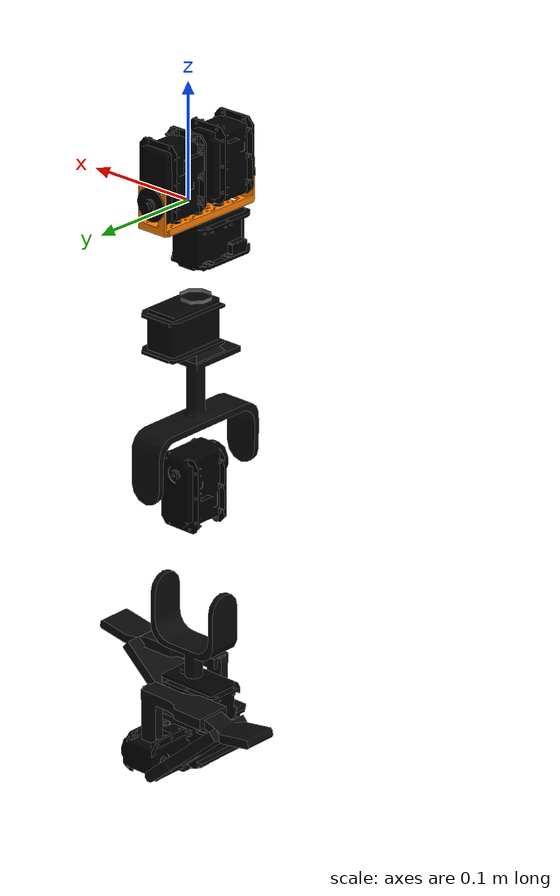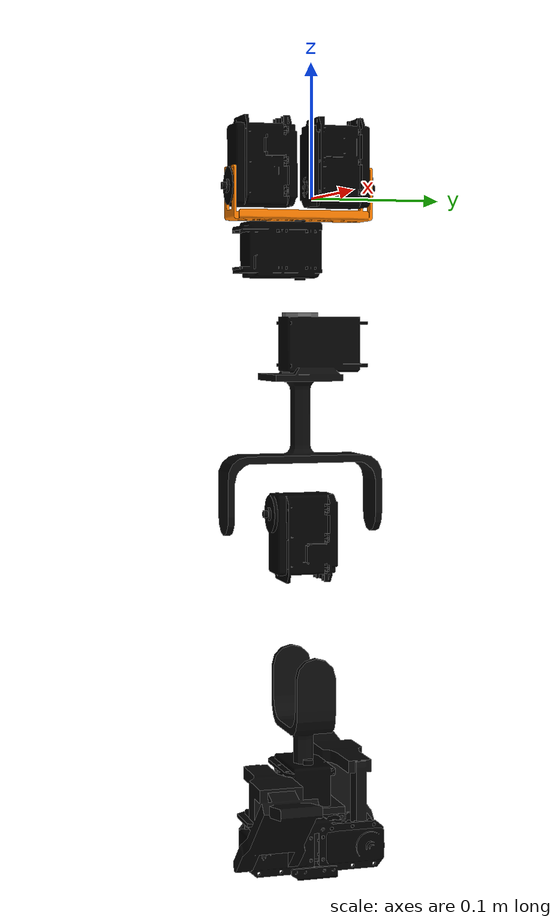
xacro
<?xml version="1.0"?>
<robot name="justina_left_arm" xmlns:xacro="http://www.ros.org/wiki/xacro">
  <!--xacro:include filename="$(find justina_description)/urdf/justina/components/justina_left_arm.gazebo"/-->

  <!-- LEFT ARM LINKS -->
  <link name="shoulders_left_link">
    <visual>
      <origin xyz="0 -0.01 0.02" rpy = "0 3.1415 0"/>
      <geometry>
        <mesh filename="package://justina_description/meshes/justina/servos/Mx106-2.dae"/>
      </geometry>
    </visual>
    <collision>
      <origin xyz="0 -0.01 0.02" rpy = "0 3.1415 0"/>
      <geometry>
        <mesh filename="package://justina_description/meshes/justina/servos/Mx106-2.dae"/>
      </geometry>
    </collision>
    <inertial>
      <origin xyz="0 -0.01 0.02" rpy = "0 0 0"/>
      <mass value="0.125"/>
      <inertia
        ixx="0.0015" ixy="0.0" ixz="0.0"
        iyy="0.002175" iyz="0.0"
        izz="0.003075"/>
    </inertial>
  </link>

  <link name="left_shoulder_frame">
    <visual>
      <origin xyz="0 -0.01 0.01" rpy="0 0 -1.5707"/>
      <geometry>
       <mesh filename="package://justina_description/meshes/justina/arm/shoulder_frame.dae"/>
      </geometry>
      <material name = "la_material"><color rgba="1.0 0.5 0 1"/></material>
    </visual>
    <collision>
      <origin xyz="0 -0.01 0.01" rpy="0 0 -1.5707"/>
      <geometry>
       <mesh filename="package://justina_description/meshes/justina/arm/shoulder_frame.dae"/>
      </geometry>
    </collision>
    <inertial>
      <origin xyz="0 -0.01 0.01" rpy = "0 0 -1.5707"/>
      <mass value="0.08146"/>
      <inertia
        ixx="0.0000813217" ixy="0.0" ixz="0.0"
        iyy="0.000196" iyz="0.0"
        izz="0.0001282"/>
    </inertial>
  </link>

  <link name="left_arm">
    <visual>
      <origin xyz="0 0 -0.02" rpy="0 0 6.2822"/>
      <geometry>
       <mesh filename="package://justina_description/meshes/justina/servos/Mx64.dae"/>
      </geometry>
    </visual>
    <visual>
      <origin xyz="0 0 -0.216" rpy="0 3.1416 1.5707"/>
      <geometry>
       <mesh filename="package://justina_description/meshes/justina/arm/arm.dae"/>
      </geometry>
    </visual>
    <collision>
      <origin xyz="0 0 -0.02" rpy="0 0 6.2822"/>
      <geometry>
       <mesh filename="package://justina_description/meshes/justina/servos/Mx64.dae"/>
      </geometry>
    </collision>
    <collision>
      <origin xyz="0 0 -0.216" rpy="0 3.1416 1.5707"/>
      <geometry>
       <mesh filename="package://justina_description/meshes/justina/arm/arm.dae"/>
      </geometry>
    </collision>
    <inertial>
      <origin xyz="0 0 0" rpy = "0 0 0"/>
      <mass value="0.155"/>
      <inertia
        ixx="0.0015" ixy="0.0" ixz="0.0"
        iyy="0.002175" iyz="0.0"
        izz="0.003075"/>
    </inertial>
  </link>

  <link name="left_forearm">
    <visual>
      <origin xyz="0 0 0" rpy="1.5707 0 0"/>
      <geometry>
       <mesh filename="package://justina_description/meshes/justina/servos/Mx106.dae"/>
      </geometry>
    </visual>
    <visual>
      <origin xyz="0 0 -0.12" rpy="0 0 1.5707"/>
      <geometry>
       <mesh filename="package://justina_description/meshes/justina/arm/forearm.dae"/>
      </geometry>
    </visual>
    <visual>
      <origin xyz="0.009 0.001 -0.21" rpy="0 0 -1.5707"/>
      <geometry>
       <mesh filename="package://justina_description/meshes/justina/servos/Mx64.dae"/>
      </geometry>
    </visual>
    <collision>
      <origin xyz="0 0 0" rpy="0 0 0"/>
      <geometry>
       <mesh filename="package://justina_description/meshes/justina/servos/Mx106.dae"/>
      </geometry>
    </collision>
    <collision>
      <origin xyz="0 0 -0.12" rpy="0 0 1.5707"/>
      <geometry>
       <mesh filename="package://justina_description/meshes/justina/arm/forearm.dae"/>
      </geometry>
    </collision>
    <collision>
      <origin xyz="0.009 0.001 -0.21" rpy="0 0 -1.5707"/>
      <geometry>
       <mesh filename="package://justina_description/meshes/justina/servos/Mx64.dae"/>
      </geometry>
    </collision>
    <inertial>
      <origin xyz="0 0 0" rpy = "0 0 0"/>
      <mass value="0.155"/>
      <inertia
        ixx="0.0015" ixy="0.0" ixz="0.0"
        iyy="0.002175" iyz="0.0"
        izz="0.003075"/>
    </inertial>
  </link>

  <link name="left_gripper_motors">
    <visual>
      <origin xyz="0 -0.004 0" rpy="1.5707 -1.5707 0"/>
      <geometry>
        <mesh filename="package://justina_description/meshes/justina/servos/Mx28-2.dae"/>
      </geometry>
    </visual>
    <collision>
      <origin xyz="0 -0.004 0" rpy="1.5707 -1.5707 0"/>
      <geometry>
        <mesh filename="package://justina_description/meshes/justina/servos/Mx28-2.dae"/>
      </geometry>
    </collision>
    <inertial>
      <origin xyz="0 0 0" rpy = "0 0 0"/>
      <mass value="0.155"/>
      <inertia
        ixx="0.0015" ixy="0.0" ixz="0.0"
        iyy="0.002175" iyz="0.0"
        izz="0.003075"/>
    </inertial>
  </link>

    <link name="left_right_jaw">
    <visual>
      <origin xyz="0 0 0" rpy="0 1.5707 3.1416"/>
      <geometry>
        <mesh filename="package://justina_description/meshes/justina/arm/gripper.dae"/>
      </geometry>
    </visual>
    <collision>
      <origin xyz="0 0 0" rpy="0 1.5707 3.1416"/>
      <geometry>
        <mesh filename="package://justina_description/meshes/justina/arm/gripper.dae"/>
      </geometry>
    </collision>
    <inertial>
      <origin xyz="0 0 0" rpy = "0 0 0"/>
      <mass value="0.155"/>
      <inertia
        ixx="0.0015" ixy="0.0" ixz="0.0"
        iyy="0.002175" iyz="0.0"
        izz="0.003075"/>
    </inertial>
  </link>

    <link name="left_left_jaw">
    <visual>
      <origin xyz="0 0 0" rpy="0 1.5707 0"/>
      <geometry>
        <mesh filename="package://justina_description/meshes/justina/arm/gripper.dae"/>
      </geometry>
    </visual>
    <collision>
      <origin xyz="0 0 0" rpy="0 0 0"/>
      <geometry>
        <mesh filename="package://justina_description/meshes/justina/arm/gripper.dae"/>
      </geometry>
    </collision>
    <inertial>
      <origin xyz="0 0 0" rpy = "0 0 0"/>
      <mass value="0.155"/>
      <inertia
        ixx="0.0015" ixy="0.0" ixz="0.0"
        iyy="0.002175" iyz="0.0"
        izz="0.003075"/>
    </inertial>
  </link>

  <!-- LEFT ARM JOINTS -->
  <joint name="left_torso_shoulder" type="revolute">
    <origin xyz="0 0 0.01" rpy="0 0 0"/>
    <parent link="shoulders_left_link"/>
    <child link="left_shoulder_frame"/>
    <axis xyz="0 -1 0" />
    <dynamics damping ="0.1" />
    <limit effort="16.0" velocity="3.0" lower="-1.7" upper="1.7"/>
  </joint>

  <joint name="left_shoulder_arm_motor" type="revolute">
    <origin xyz="0 -0.009 -0.028" rpy="0 0 0"/>
    <parent link="left_shoulder_frame"/>
    <child link="left_arm"/>
    <axis xyz="0 0 -1" />
    <dynamics damping ="0.1" />
    <limit effort="16.0" velocity="3.0" lower="-1.7" upper="1.7"/>
  </joint>

  <joint name="left_elbow" type="revolute">
    <origin xyz="0 0.002 -0.216" rpy="0 0 0"/>
    <parent link="left_arm"/>
    <child link="left_forearm"/>
    <axis xyz="0 -1 0" />
    <dynamics damping ="0.1" />
    <limit effort="16.0" velocity="3.0" lower="-1.7" upper="1.7"/>
  </joint>

  <joint name="left_wrist" type="revolute">
    <origin xyz="0.009 0.001 -0.25" rpy="0 0 0"/>
    <parent link="left_forearm"/>
    <child link="left_gripper_motors"/>
    <axis xyz="0 0 -1" />
    <dynamics damping ="0.1" />
    <limit effort="16.0" velocity="3.0" lower="-1.7" upper="1.7"/>
  </joint>

  <joint name="left_right_jaw_joint" type="revolute">
    <origin xyz="0 -0.04 0" rpy="0 0 0"/>
    <parent link="left_gripper_motors"/>
    <child link="left_right_jaw"/>
    <axis xyz="-1 0 0" />
    <dynamics damping ="0.1" />
    <limit effort="16.0" velocity="3.0" lower="-1.7" upper="1.7"/>
  </joint>

  <joint name="left_left_jaw_joint" type="revolute">
    <origin xyz="0 0.04 0" rpy="0 0 0"/>
    <parent link="left_gripper_motors"/>
    <child link="left_left_jaw"/>
    <axis xyz="-1 0 0" />
    <dynamics damping ="0.1" />
    <limit effort="16.0" velocity="3.0" lower="-1.7" upper="1.7"/>
  </joint>
</robot>
